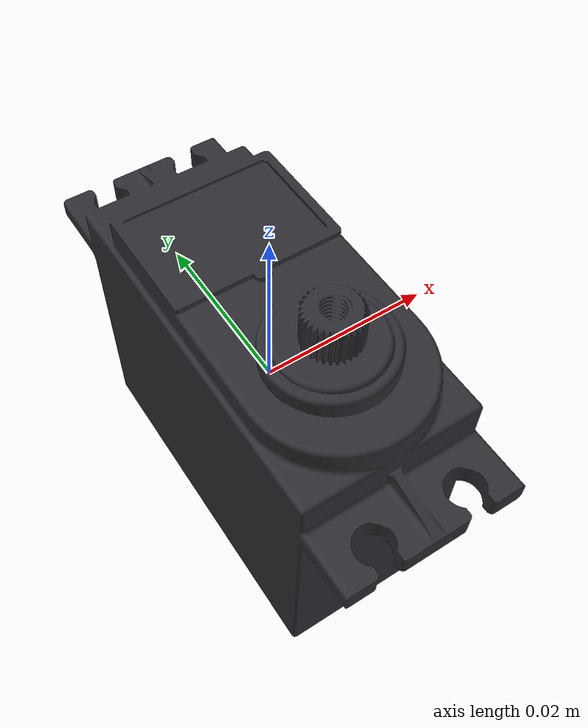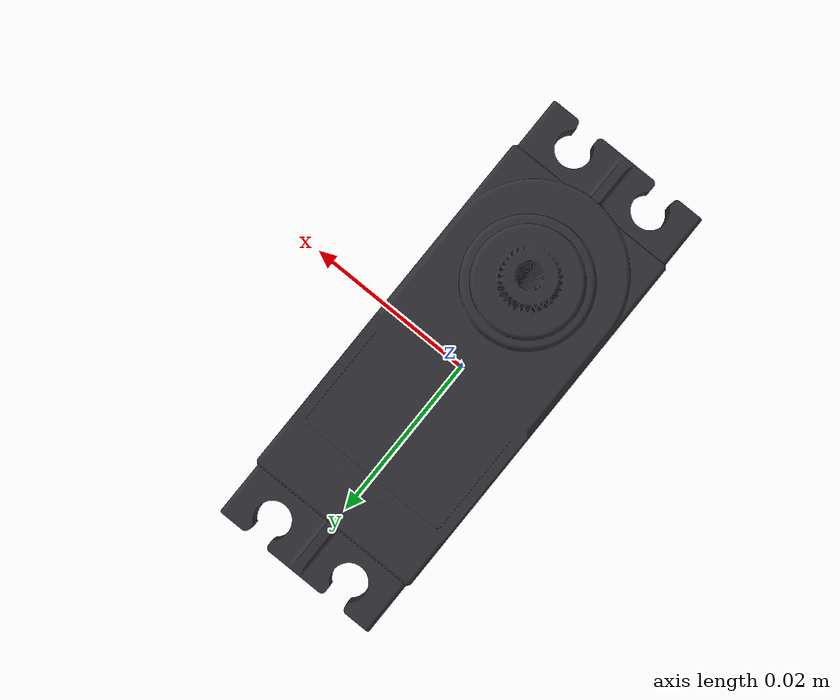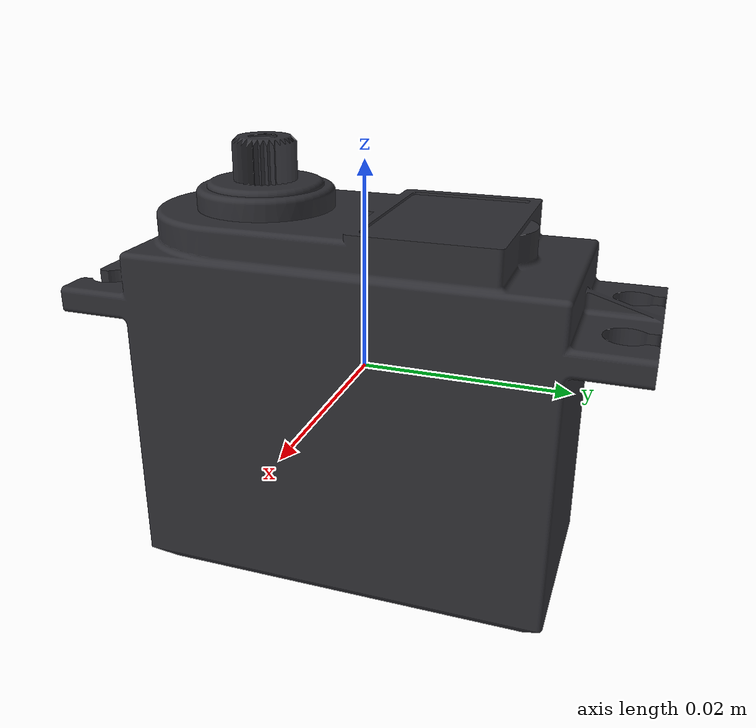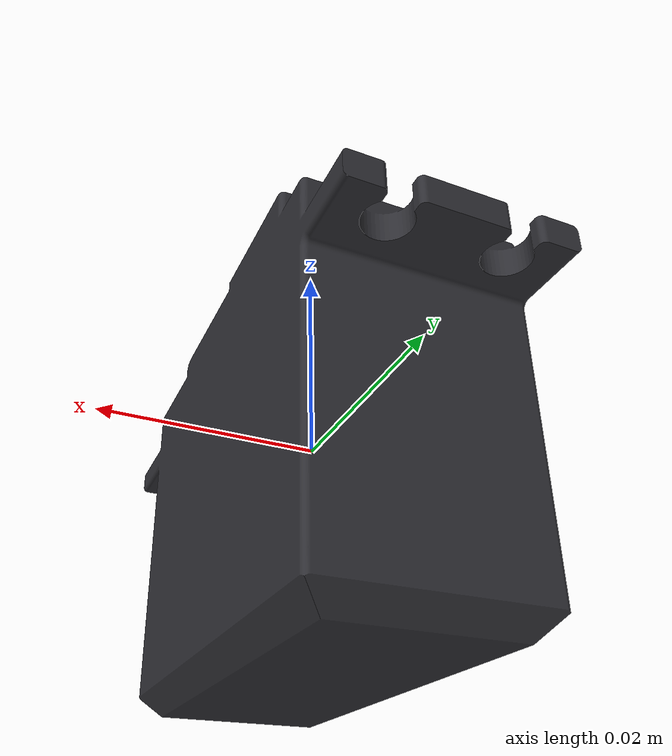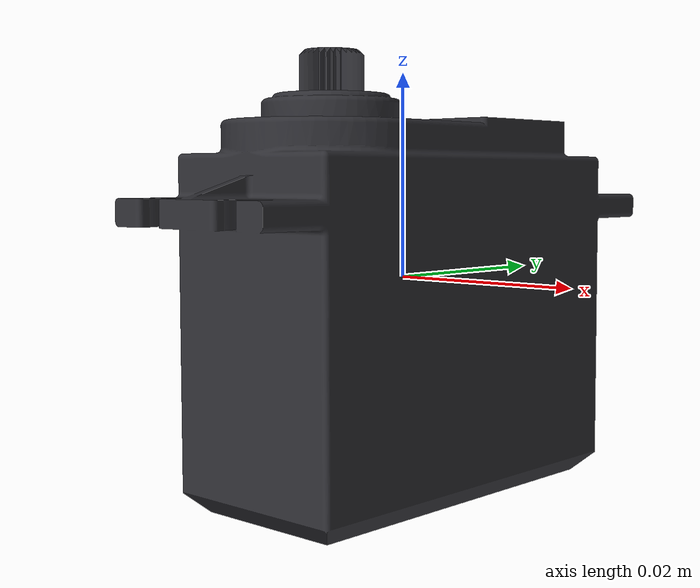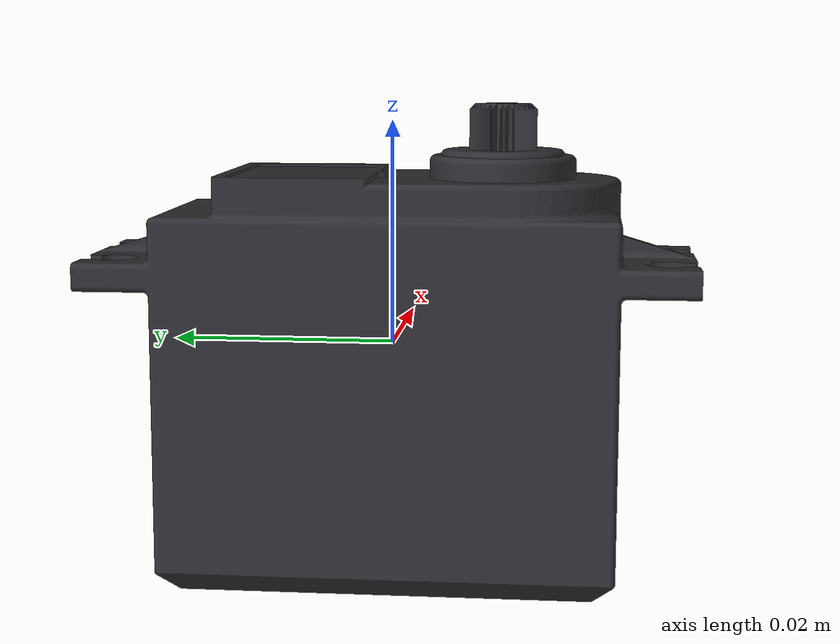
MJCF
<?xml version='1.0' encoding='utf-8'?>
<mujoco model="part_servo">
  <compiler angle="radian" meshdir="." autolimits="true"/>
  <visual>
    <global offwidth="1024" offheight="1024"/>
    <headlight ambient="0.55 0.55 0.55" diffuse="0.6 0.6 0.6" specular="0.2 0.2 0.2"/>
  </visual>
  <default>
    <default class="visual"><geom type="mesh" contype="0" conaffinity="0" group="2" density="0"/></default>
    <default class="collision"><geom type="mesh" group="3"/></default>
  </default>
  <asset>
    <mesh name="servo" file="舵机.STL" scale="0.001 0.001 0.001"/>
    <material name="dark" rgba="0.18 0.18 0.20 1"/>
  </asset>
  <worldbody>
    <!-- source 舵机.STL: bbox min 0.001878 0.000025 0.000000 max 19.501879 54.000023 43.000000 mm, size 19.500001 53.999998 43.000000 mm -->
    <body name="servo">
      <geom name="servo_visual" mesh="servo" class="visual" material="dark" pos="-0.009752 -0.027000 -0.021500"/>
      <geom name="servo_collision" mesh="servo" class="collision" pos="-0.009752 -0.027000 -0.021500" density="1600"/>
    </body>
  </worldbody>
</mujoco>
